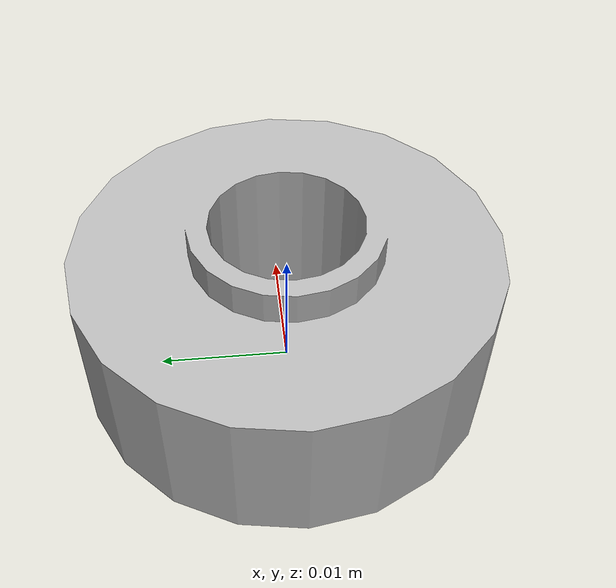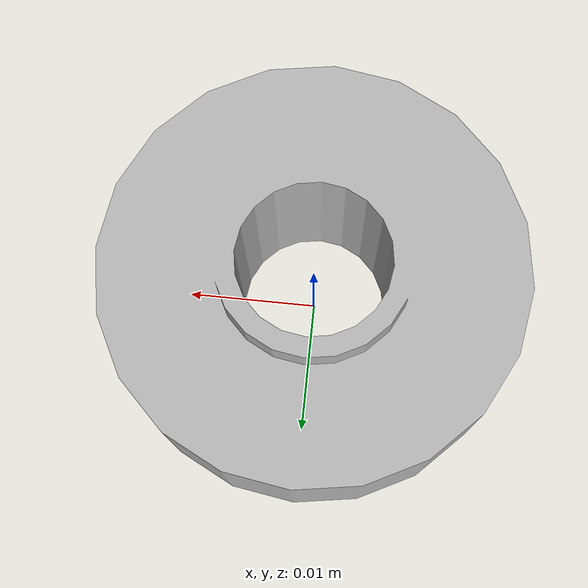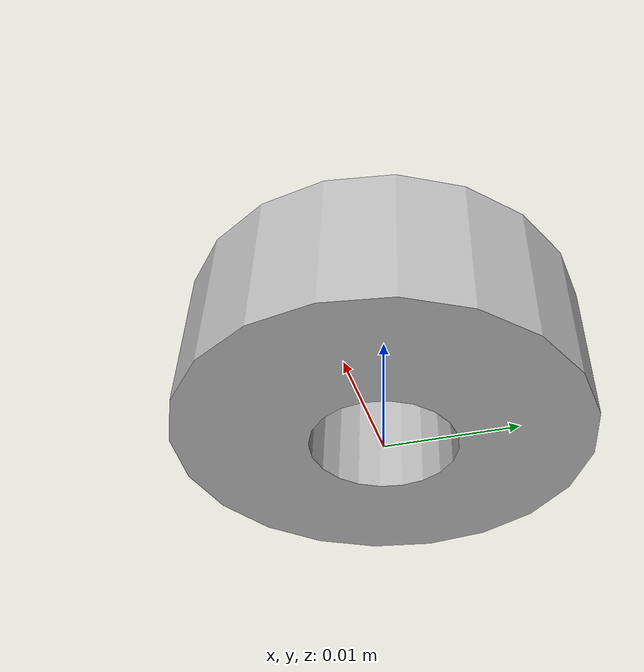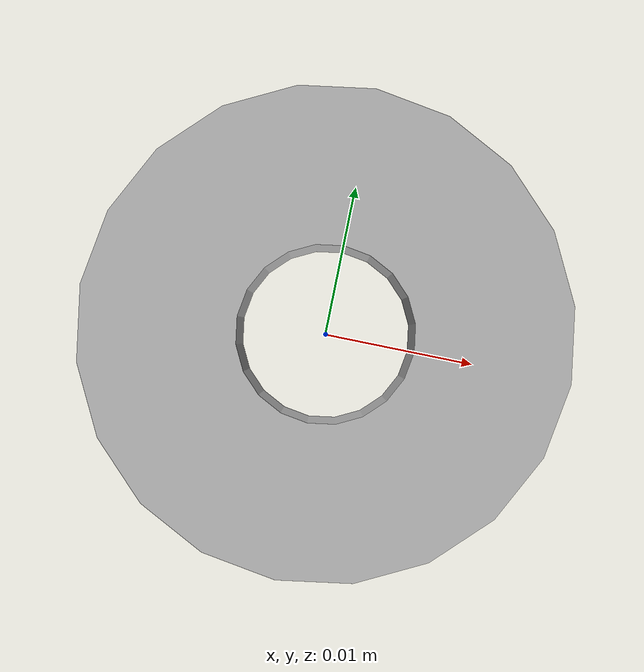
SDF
<?xml version="1.0" ?>
<sdf version="1.6">
  <model name="disk_part">
    <link name="link">
      <inertial>
        <pose>0 0 0.00579 0 0 0</pose>
        <mass>0.1</mass>
        <inertia>
          <ixx>0.0032121798</ixx>
          <ixy>0</ixy>
          <ixz>0</ixz>
          <iyy>0.0032121798</iyy>
          <iyz>0</iyz>
          <izz>0.0061449921</izz>
        </inertia>
      </inertial>

      <collision name="collision">
        <pose>0 0 0.00579 0 0 0</pose>
        <geometry>
          <box>
            <size>0.020000 0.020000 0.02316</size>
          </box>
        </geometry>
      </collision>

      <visual name="visual">
         <geometry>
           <mesh>
             <uri>model://disk_part/meshes/disk.dae</uri>
             <scale>0.1 0.1 0.2</scale>
           </mesh>
         </geometry>
        <material>
          <script>
            <uri>model://arm_part/materials/scripts</uri>
            <uri>model://arm_part/materials/textures</uri>
            <name>ArmPart/Diffuse</name>
          </script>
        </material>
       </visual>
    </link>
  </model>
</sdf>
